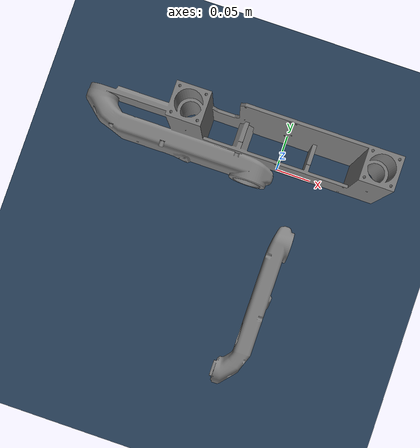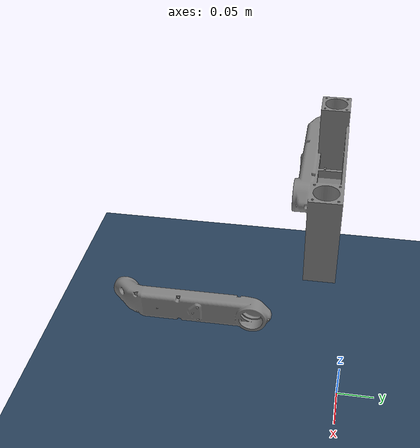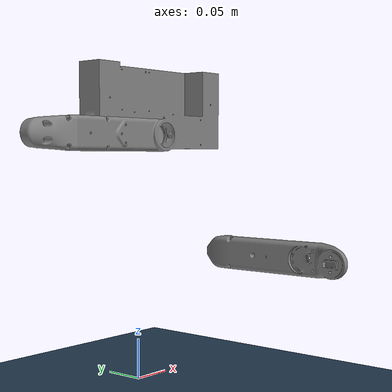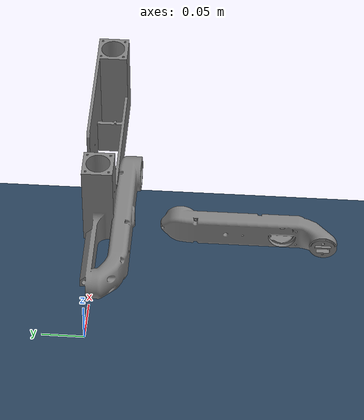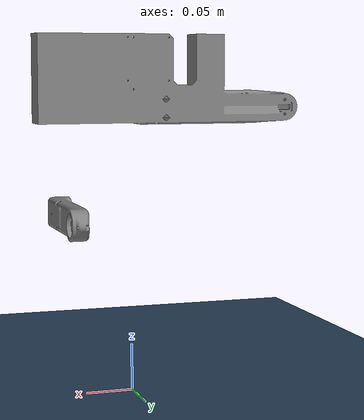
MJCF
<mujoco model="leg_2dof">

  <!-- ===== COMPILATION & SIMULATION OPTIONS ===== -->
  <compiler angle="radian" autolimits="true"/>
  <option timestep="0.002" integrator="implicit" solver="Newton" gravity="0 0 -9.81"/>

  <!--include file='assets/2DOF_leg/stand_complete.xml'> -->
  <!-- ===== ASSETS ===== -->
  <asset>
    <!-- Meshes STl file are in cm -->
    <mesh name="hip_base"   file="assets/2DOF_leg/hips_supported.stl"   scale="0.001 0.001 0.001"/>
    <mesh name="upper_base" file="assets/2DOF_leg/upper_leg.stl" scale="0.01 0.01 0.01"/>
    <mesh name="lower_leg"  file="assets/2DOF_leg/leg.stl"       scale="0.01 0.01 0.01"/>

    <!-- Sol texture -->
    <texture name="tex_ground" type="2d" builtin="checker"
             rgb1="0.2 0.3 0.4" rgb2="0.1 0.2 0.3"
             mark="edge" markrgb="0.8 0.8 0.8" width="512" height="512"/>
    <material name="mat_ground" texture="tex_ground" texuniform="true" texrepeat="5 5" reflectance="0.2"/>
  </asset>

  <!-- ===== DEFAULTS ===== -->
  <default>
    <!-- general parameter -->
    <joint damping="1.0" armature="0.01"/>
    <geom friction="1.0 0.1 0.1" margin="0.002" solref="-2000 -100" solimp="0.9 0.95 0.001"/>

    <!-- Leg class -->
    <default class="leg_part">
      <geom contype="1" conaffinity="1" group="0"/>
    </default>

    <!-- Motor class -->
    <default class="motor">
      <motor ctrlrange="-1 1" forcerange="-10 10"/>
    </default>
  </default>

  <!-- ===== World ===== -->
  <worldbody>
    <!-- Ground and Light -->
    <geom name="floor" type="plane" pos="0 0 0" size="0 0 0.05" material="mat_ground"/>
    <light directional="true" pos="0 0 5" dir="0 0 -1" diffuse=".9 .9 .9" specular=".2 .2 .2"/>

    <!-- Main body ( fixed base) -->
    <body name="base" pos="0 0 0.28" quat="0.70710678 0.70710678 0 0" childclass="leg_part">
      <geom name="hip_geom" type="mesh" mesh="hip_base"/>
      <inertial mass="0.25" pos="0 0 0" diaginertia="0.003 0.003 0.003"/>

      <!-- Firts degree of freedom: hip -->
      <body name="upper_leg" pos="0.03 -0.114 0.111" quat="1 0 0 0" childclass="leg_part">
        <joint name="hip_joint" type="hinge" pos="0 0 0.15" axis="1 0 0" range="-2.0 0.5" damping="1000.0"/>
        <geom name="upper_geom" type="mesh" mesh="upper_base"/>
        <inertial mass="0.15" pos="0 0 -0.05" diaginertia="0.002 0.002 0.002"/>

        <!-- Second degree of freedom knee -->

      </body>
    </body>
  </worldbody>

  <!-- ===== actuator ===== -->
  <actuator>
    <motor name="hip_motor"  joint="hip_joint"  class="motor" gear="1" />
  </actuator>

</mujoco>
